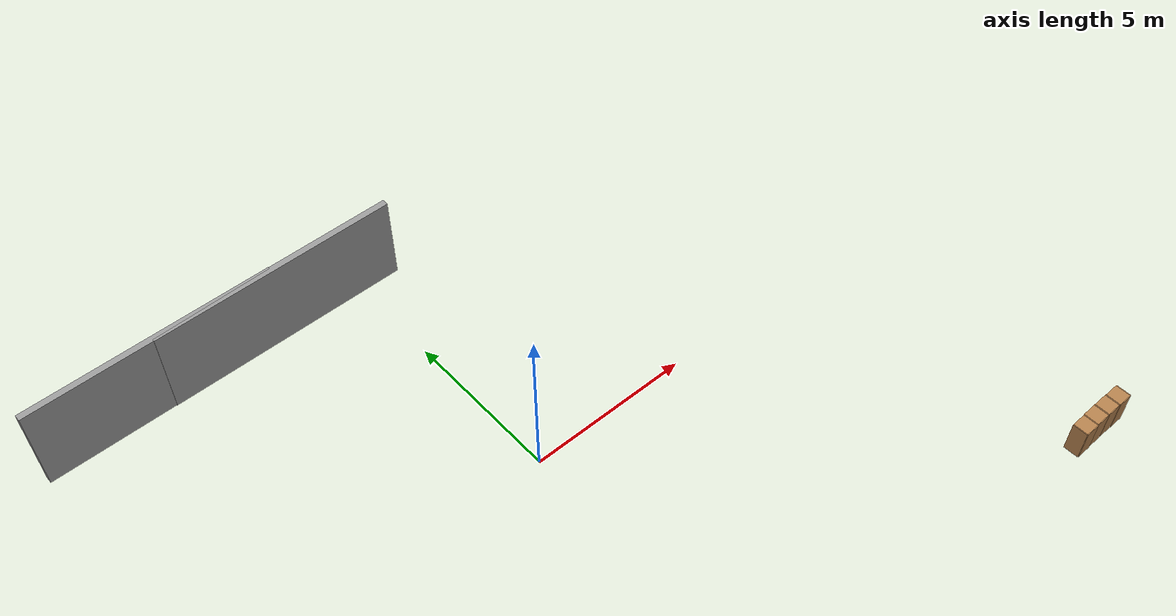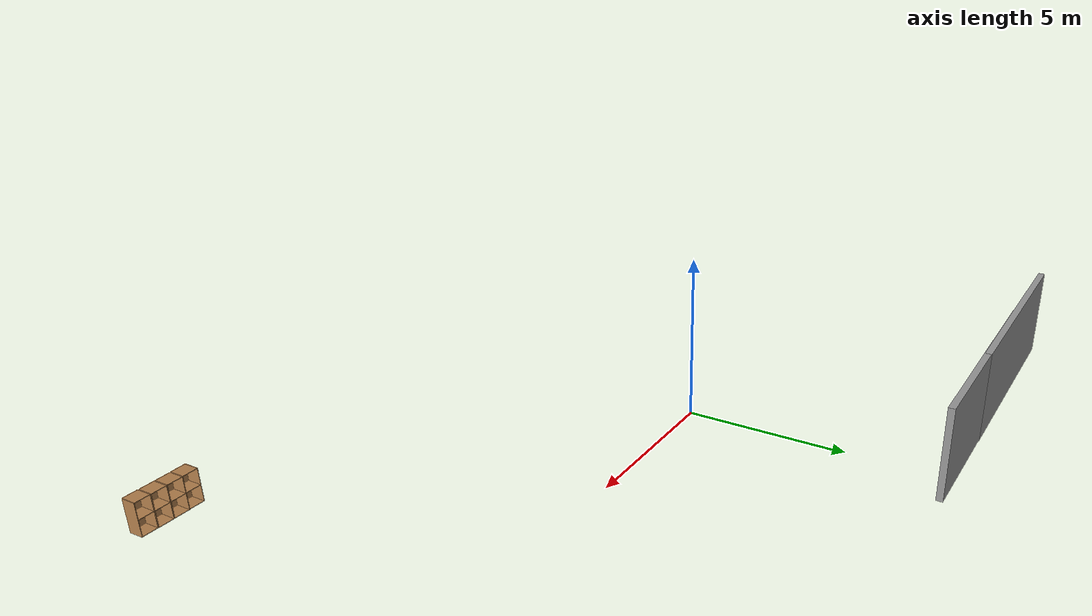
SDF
<sdf version="1.6">
 <world name="factory">
  <model name="deletion_wall">
   <static>1</static>
   <link name="sensing_link">
    <gravity>0</gravity>
    <sensor name="object_disposal_contact" type="contact">
     <update_rate>10</update_rate>
     <contact><collision>collision</collision><topic>__default_topic__</topic></contact>
    </sensor>
    <collision name="collision"><geometry><box><size>0.1 1 1</size></box></geometry></collision>
    <visual name="visual">
     <geometry><box><size>0.1 1 1</size></box></geometry>
     <cast_shadows>0</cast_shadows>
     <transparency>100</transparency>
    </visual>
   </link>
   <plugin name="object_disposal_plugin" filename="libObjectDisposalPlugin.so">
    <contact_sensor_name>object_disposal_contact</contact_sensor_name>
    <contact_side_normal>1 0 0</contact_side_normal>
    <disposal_pose>30 30 0 0 0 0</disposal_pose>
    <update_rate>5</update_rate>
   </plugin>
   <pose>0.199032 -1.08981 0 0 -0 0</pose>
  </model>
  <model name="drone_collection_zone">
   <static>1</static>
   <link name="sensing_link">
    <gravity>0</gravity>
    <sensor name="object_disposal_contact" type="contact">
     <update_rate>10</update_rate>
     <contact><collision>collision</collision><topic>__default_topic__</topic></contact>
    </sensor>
    <collision name="collision"><geometry><box><size>0.1 2 2</size></box></geometry></collision>
   </link>
   <plugin name="object_disposal_plugin" filename="libObjectDisposalPlugin.so">
    <contact_sensor_name>object_disposal_contact</contact_sensor_name>
    <contacting_box_topic>/ariac/waiting_shipping_box</contacting_box_topic>
    <activation_topic>/ariac/drone_collection_zone/activate_deletion</activation_topic>
    <contact_side_normal>1 0 0</contact_side_normal>
    <disposal_pose>-7.5 -10 -0.5 0 0 0</disposal_pose>
    <update_rate>5</update_rate>
   </plugin>
   <pose>-0.093674 -2.00167 0 0 -0 0</pose>
  </model>
  <model name="grey_wall">
   <static>1</static>
   <link name="link">
    <pose>0 0 1.4 0 -0 0</pose>
    <collision name="collision"><geometry><box><size>7.5 0.2 2.8</size></box></geometry></collision>
    <visual name="visual">
     <cast_shadows>0</cast_shadows>
     <geometry><box><size>7.5 0.2 2.8</size></box></geometry>
     <material>
      <script>
       <uri>model://grey_wall/materials/scripts</uri>
       <uri>model://grey_wall/materials/textures</uri>
       <name>vrc/grey_wall</name>
      </script>
     </material>
    </visual>
   </link>
   <pose>-6.34942 8.1136 0 0 -0 0</pose>
  </model>
  <model name="grey_wall_clone">
   <static>1</static>
   <link name="link">
    <pose>0 0 1.4 0 -0 0</pose>
    <collision name="collision"><geometry><box><size>7.5 0.2 2.8</size></box></geometry></collision>
    <visual name="visual">
     <cast_shadows>0</cast_shadows>
     <geometry><box><size>7.5 0.2 2.8</size></box></geometry>
     <material>
      <script>
       <uri>model://grey_wall/materials/scripts</uri>
       <uri>model://grey_wall/materials/textures</uri>
       <name>vrc/grey_wall</name>
      </script>
     </material>
    </visual>
   </link>
   <pose>-2.50623 8.09985 0 0 -0 0</pose>
  </model>
  <model name="cabinet_clone">
   <static>1</static>
   <link name="cabinet_bottom_plate">
    <inertial>
     <pose>0 0 -1 0 -0 0</pose>
     <inertia><ixx>2.05</ixx><ixy>0</ixy><ixz>0</ixz><iyy>2.05</iyy><iyz>0</iyz><izz>2.05</izz></inertia>
     <mass>25</mass>
    </inertial>
    <collision name="cabinet_bottom_plate_geom">
     <pose>0 0 0.01 0 -0 0</pose>
     <geometry><box><size>0.45 0.45 0.02</size></box></geometry>
    </collision>
    <visual name="cabinet_bottom_plate_geom_visual">
     <pose>0 0 0.01 0 -0 0</pose>
     <geometry><box><size>0.45 0.45 0.02</size></box></geometry>
     <material>
      <script><uri>file://media/materials/scripts/gazebo.material</uri><name>Gazebo/Wood</name></script>
     </material>
    </visual>
    <collision name="cabinet_bottom_plate_geom_cabinet_back_plate">
     <pose>0.235 0 0.51 0 -0 0</pose>
     <geometry><box><size>0.02 0.45 1.02</size></box></geometry>
    </collision>
    <visual name="cabinet_bottom_plate_geom_cabinet_back_plate_visual">
     <pose>0.235 0 0.51 0 -0 0</pose>
     <geometry><box><size>0.02 0.45 1.02</size></box></geometry>
     <material>
      <script><uri>file://media/materials/scripts/gazebo.material</uri><name>Gazebo/Wood</name></script>
     </material>
    </visual>
    <collision name="cabinet_bottom_plate_geom_cabinet_left_plate">
     <pose>0 0.235 0.51 0 -0 0</pose>
     <geometry><box><size>0.45 0.02 1.02</size></box></geometry>
    </collision>
    <visual name="cabinet_bottom_plate_geom_cabinet_left_plate_visual">
     <pose>0 0.235 0.51 0 -0 0</pose>
     <geometry><box><size>0.45 0.02 1.02</size></box></geometry>
     <material>
      <script><uri>file://media/materials/scripts/gazebo.material</uri><name>Gazebo/Wood</name></script>
     </material>
    </visual>
    <collision name="cabinet_bottom_plate_geom_cabinet_middle_plate">
     <pose>0 0 0.51 0 -0 0</pose>
     <geometry><box><size>0.45 0.45 0.02</size></box></geometry>
    </collision>
    <visual name="cabinet_bottom_plate_geom_cabinet_middle_plate_visual">
     <pose>0 0 0.51 0 -0 0</pose>
     <geometry><box><size>0.45 0.45 0.02</size></box></geometry>
     <material>
      <script><uri>file://media/materials/scripts/gazebo.material</uri><name>Gazebo/Wood</name></script>
     </material>
    </visual>
    <collision name="cabinet_bottom_plate_geom_cabinet_right_plate">
     <pose>0 -0.235 0.51 0 -0 0</pose>
     <geometry><box><size>0.45 0.02 1.02</size></box></geometry>
    </collision>
    <visual name="cabinet_bottom_plate_geom_cabinet_right_plate_visual">
     <pose>0 -0.235 0.51 0 -0 0</pose>
     <geometry><box><size>0.45 0.02 1.02</size></box></geometry>
     <material>
      <script><uri>file://media/materials/scripts/gazebo.material</uri><name>Gazebo/Wood</name></script>
     </material>
    </visual>
    <collision name="cabinet_bottom_plate_geom_cabinet_top_plate">
     <pose>0 0 1.01 0 -0 0</pose>
     <geometry><box><size>0.45 0.45 0.02</size></box></geometry>
    </collision>
    <visual name="cabinet_bottom_plate_geom_cabinet_top_plate_visual">
     <pose>0 0 1.01 0 -0 0</pose>
     <geometry><box><size>0.45 0.45 0.02</size></box></geometry>
     <material>
      <script><uri>file://media/materials/scripts/gazebo.material</uri><name>Gazebo/Wood</name></script>
     </material>
    </visual>
   </link>
   <pose>12.5585 -9.14446 0.037072 0 0 -1.55676</pose>
  </model>
  <model name="cabinet_clone_0">
   <static>1</static>
   <link name="cabinet_bottom_plate">
    <inertial>
     <pose>0 0 -1 0 -0 0</pose>
     <inertia><ixx>2.05</ixx><ixy>0</ixy><ixz>0</ixz><iyy>2.05</iyy><iyz>0</iyz><izz>2.05</izz></inertia>
     <mass>25</mass>
    </inertial>
    <collision name="cabinet_bottom_plate_geom">
     <pose>0 0 0.01 0 -0 0</pose>
     <geometry><box><size>0.45 0.45 0.02</size></box></geometry>
    </collision>
    <visual name="cabinet_bottom_plate_geom_visual">
     <pose>0 0 0.01 0 -0 0</pose>
     <geometry><box><size>0.45 0.45 0.02</size></box></geometry>
     <material>
      <script><uri>file://media/materials/scripts/gazebo.material</uri><name>Gazebo/Wood</name></script>
     </material>
    </visual>
    <collision name="cabinet_bottom_plate_geom_cabinet_back_plate">
     <pose>0.235 0 0.51 0 -0 0</pose>
     <geometry><box><size>0.02 0.45 1.02</size></box></geometry>
    </collision>
    <visual name="cabinet_bottom_plate_geom_cabinet_back_plate_visual">
     <pose>0.235 0 0.51 0 -0 0</pose>
     <geometry><box><size>0.02 0.45 1.02</size></box></geometry>
     <material>
      <script><uri>file://media/materials/scripts/gazebo.material</uri><name>Gazebo/Wood</name></script>
     </material>
    </visual>
    <collision name="cabinet_bottom_plate_geom_cabinet_left_plate">
     <pose>0 0.235 0.51 0 -0 0</pose>
     <geometry><box><size>0.45 0.02 1.02</size></box></geometry>
    </collision>
    <visual name="cabinet_bottom_plate_geom_cabinet_left_plate_visual">
     <pose>0 0.235 0.51 0 -0 0</pose>
     <geometry><box><size>0.45 0.02 1.02</size></box></geometry>
     <material>
      <script><uri>file://media/materials/scripts/gazebo.material</uri><name>Gazebo/Wood</name></script>
     </material>
    </visual>
    <collision name="cabinet_bottom_plate_geom_cabinet_middle_plate">
     <pose>0 0 0.51 0 -0 0</pose>
     <geometry><box><size>0.45 0.45 0.02</size></box></geometry>
    </collision>
    <visual name="cabinet_bottom_plate_geom_cabinet_middle_plate_visual">
     <pose>0 0 0.51 0 -0 0</pose>
     <geometry><box><size>0.45 0.45 0.02</size></box></geometry>
     <material>
      <script><uri>file://media/materials/scripts/gazebo.material</uri><name>Gazebo/Wood</name></script>
     </material>
    </visual>
    <collision name="cabinet_bottom_plate_geom_cabinet_right_plate">
     <pose>0 -0.235 0.51 0 -0 0</pose>
     <geometry><box><size>0.45 0.02 1.02</size></box></geometry>
    </collision>
    <visual name="cabinet_bottom_plate_geom_cabinet_right_plate_visual">
     <pose>0 -0.235 0.51 0 -0 0</pose>
     <geometry><box><size>0.45 0.02 1.02</size></box></geometry>
     <material>
      <script><uri>file://media/materials/scripts/gazebo.material</uri><name>Gazebo/Wood</name></script>
     </material>
    </visual>
    <collision name="cabinet_bottom_plate_geom_cabinet_top_plate">
     <pose>0 0 1.01 0 -0 0</pose>
     <geometry><box><size>0.45 0.45 0.02</size></box></geometry>
    </collision>
    <visual name="cabinet_bottom_plate_geom_cabinet_top_plate_visual">
     <pose>0 0 1.01 0 -0 0</pose>
     <geometry><box><size>0.45 0.45 0.02</size></box></geometry>
     <material>
      <script><uri>file://media/materials/scripts/gazebo.material</uri><name>Gazebo/Wood</name></script>
     </material>
    </visual>
   </link>
   <pose>12.0748 -9.14339 0.037072 0 0 -1.55676</pose>
  </model>
  <model name="cabinet_clone_1">
   <static>1</static>
   <link name="cabinet_bottom_plate">
    <inertial>
     <pose>0 0 -1 0 -0 0</pose>
     <inertia><ixx>2.05</ixx><ixy>0</ixy><ixz>0</ixz><iyy>2.05</iyy><iyz>0</iyz><izz>2.05</izz></inertia>
     <mass>25</mass>
    </inertial>
    <collision name="cabinet_bottom_plate_geom">
     <pose>0 0 0.01 0 -0 0</pose>
     <geometry><box><size>0.45 0.45 0.02</size></box></geometry>
    </collision>
    <visual name="cabinet_bottom_plate_geom_visual">
     <pose>0 0 0.01 0 -0 0</pose>
     <geometry><box><size>0.45 0.45 0.02</size></box></geometry>
     <material>
      <script><uri>file://media/materials/scripts/gazebo.material</uri><name>Gazebo/Wood</name></script>
     </material>
    </visual>
    <collision name="cabinet_bottom_plate_geom_cabinet_back_plate">
     <pose>0.235 0 0.51 0 -0 0</pose>
     <geometry><box><size>0.02 0.45 1.02</size></box></geometry>
    </collision>
    <visual name="cabinet_bottom_plate_geom_cabinet_back_plate_visual">
     <pose>0.235 0 0.51 0 -0 0</pose>
     <geometry><box><size>0.02 0.45 1.02</size></box></geometry>
     <material>
      <script><uri>file://media/materials/scripts/gazebo.material</uri><name>Gazebo/Wood</name></script>
     </material>
    </visual>
    <collision name="cabinet_bottom_plate_geom_cabinet_left_plate">
     <pose>0 0.235 0.51 0 -0 0</pose>
     <geometry><box><size>0.45 0.02 1.02</size></box></geometry>
    </collision>
    <visual name="cabinet_bottom_plate_geom_cabinet_left_plate_visual">
     <pose>0 0.235 0.51 0 -0 0</pose>
     <geometry><box><size>0.45 0.02 1.02</size></box></geometry>
     <material>
      <script><uri>file://media/materials/scripts/gazebo.material</uri><name>Gazebo/Wood</name></script>
     </material>
    </visual>
    <collision name="cabinet_bottom_plate_geom_cabinet_middle_plate">
     <pose>0 0 0.51 0 -0 0</pose>
     <geometry><box><size>0.45 0.45 0.02</size></box></geometry>
    </collision>
    <visual name="cabinet_bottom_plate_geom_cabinet_middle_plate_visual">
     <pose>0 0 0.51 0 -0 0</pose>
     <geometry><box><size>0.45 0.45 0.02</size></box></geometry>
     <material>
      <script><uri>file://media/materials/scripts/gazebo.material</uri><name>Gazebo/Wood</name></script>
     </material>
    </visual>
    <collision name="cabinet_bottom_plate_geom_cabinet_right_plate">
     <pose>0 -0.235 0.51 0 -0 0</pose>
     <geometry><box><size>0.45 0.02 1.02</size></box></geometry>
    </collision>
    <visual name="cabinet_bottom_plate_geom_cabinet_right_plate_visual">
     <pose>0 -0.235 0.51 0 -0 0</pose>
     <geometry><box><size>0.45 0.02 1.02</size></box></geometry>
     <material>
      <script><uri>file://media/materials/scripts/gazebo.material</uri><name>Gazebo/Wood</name></script>
     </material>
    </visual>
    <collision name="cabinet_bottom_plate_geom_cabinet_top_plate">
     <pose>0 0 1.01 0 -0 0</pose>
     <geometry><box><size>0.45 0.45 0.02</size></box></geometry>
    </collision>
    <visual name="cabinet_bottom_plate_geom_cabinet_top_plate_visual">
     <pose>0 0 1.01 0 -0 0</pose>
     <geometry><box><size>0.45 0.45 0.02</size></box></geometry>
     <material>
      <script><uri>file://media/materials/scripts/gazebo.material</uri><name>Gazebo/Wood</name></script>
     </material>
    </visual>
   </link>
   <pose>11.5886 -9.15198 0.037072 0 0 -1.55676</pose>
  </model>
  <model name="cabinet_clone_2">
   <static>1</static>
   <link name="cabinet_bottom_plate">
    <inertial>
     <pose>0 0 -1 0 -0 0</pose>
     <inertia><ixx>2.05</ixx><ixy>0</ixy><ixz>0</ixz><iyy>2.05</iyy><iyz>0</iyz><izz>2.05</izz></inertia>
     <mass>25</mass>
    </inertial>
    <collision name="cabinet_bottom_plate_geom">
     <pose>0 0 0.01 0 -0 0</pose>
     <geometry><box><size>0.45 0.45 0.02</size></box></geometry>
    </collision>
    <visual name="cabinet_bottom_plate_geom_visual">
     <pose>0 0 0.01 0 -0 0</pose>
     <geometry><box><size>0.45 0.45 0.02</size></box></geometry>
     <material>
      <script><uri>file://media/materials/scripts/gazebo.material</uri><name>Gazebo/Wood</name></script>
     </material>
    </visual>
    <collision name="cabinet_bottom_plate_geom_cabinet_back_plate">
     <pose>0.235 0 0.51 0 -0 0</pose>
     <geometry><box><size>0.02 0.45 1.02</size></box></geometry>
    </collision>
    <visual name="cabinet_bottom_plate_geom_cabinet_back_plate_visual">
     <pose>0.235 0 0.51 0 -0 0</pose>
     <geometry><box><size>0.02 0.45 1.02</size></box></geometry>
     <material>
      <script><uri>file://media/materials/scripts/gazebo.material</uri><name>Gazebo/Wood</name></script>
     </material>
    </visual>
    <collision name="cabinet_bottom_plate_geom_cabinet_left_plate">
     <pose>0 0.235 0.51 0 -0 0</pose>
     <geometry><box><size>0.45 0.02 1.02</size></box></geometry>
    </collision>
    <visual name="cabinet_bottom_plate_geom_cabinet_left_plate_visual">
     <pose>0 0.235 0.51 0 -0 0</pose>
     <geometry><box><size>0.45 0.02 1.02</size></box></geometry>
     <material>
      <script><uri>file://media/materials/scripts/gazebo.material</uri><name>Gazebo/Wood</name></script>
     </material>
    </visual>
    <collision name="cabinet_bottom_plate_geom_cabinet_middle_plate">
     <pose>0 0 0.51 0 -0 0</pose>
     <geometry><box><size>0.45 0.45 0.02</size></box></geometry>
    </collision>
    <visual name="cabinet_bottom_plate_geom_cabinet_middle_plate_visual">
     <pose>0 0 0.51 0 -0 0</pose>
     <geometry><box><size>0.45 0.45 0.02</size></box></geometry>
     <material>
      <script><uri>file://media/materials/scripts/gazebo.material</uri><name>Gazebo/Wood</name></script>
     </material>
    </visual>
    <collision name="cabinet_bottom_plate_geom_cabinet_right_plate">
     <pose>0 -0.235 0.51 0 -0 0</pose>
     <geometry><box><size>0.45 0.02 1.02</size></box></geometry>
    </collision>
    <visual name="cabinet_bottom_plate_geom_cabinet_right_plate_visual">
     <pose>0 -0.235 0.51 0 -0 0</pose>
     <geometry><box><size>0.45 0.02 1.02</size></box></geometry>
     <material>
      <script><uri>file://media/materials/scripts/gazebo.material</uri><name>Gazebo/Wood</name></script>
     </material>
    </visual>
    <collision name="cabinet_bottom_plate_geom_cabinet_top_plate">
     <pose>0 0 1.01 0 -0 0</pose>
     <geometry><box><size>0.45 0.45 0.02</size></box></geometry>
    </collision>
    <visual name="cabinet_bottom_plate_geom_cabinet_top_plate_visual">
     <pose>0 0 1.01 0 -0 0</pose>
     <geometry><box><size>0.45 0.45 0.02</size></box></geometry>
     <material>
      <script><uri>file://media/materials/scripts/gazebo.material</uri><name>Gazebo/Wood</name></script>
     </material>
    </visual>
   </link>
   <pose>11.1088 -9.16946 0.037072 0 0 -1.55676</pose>
  </model>
 </world>
</sdf>
